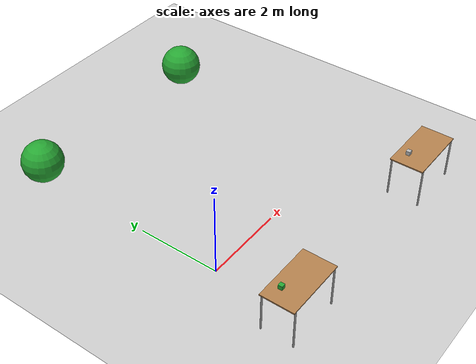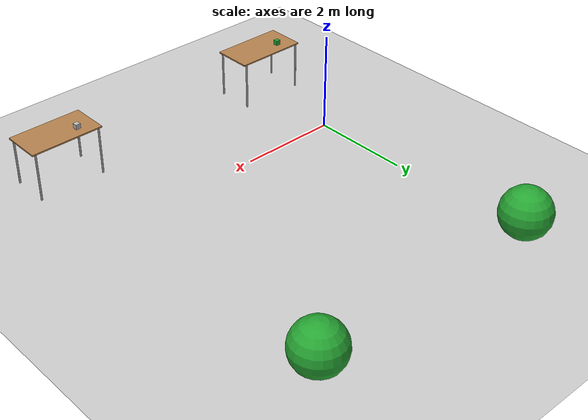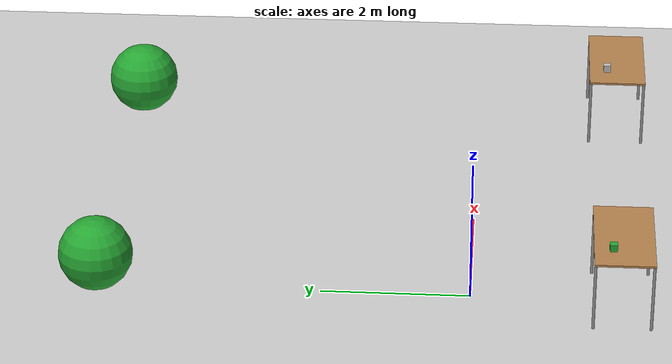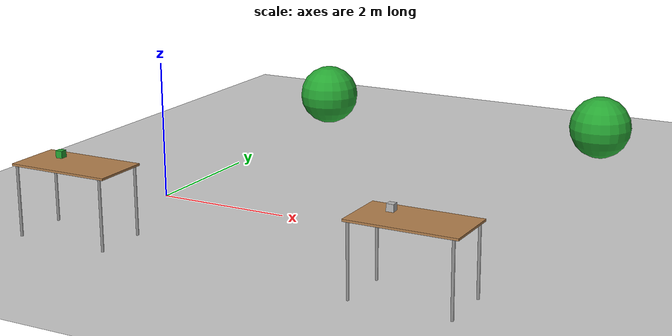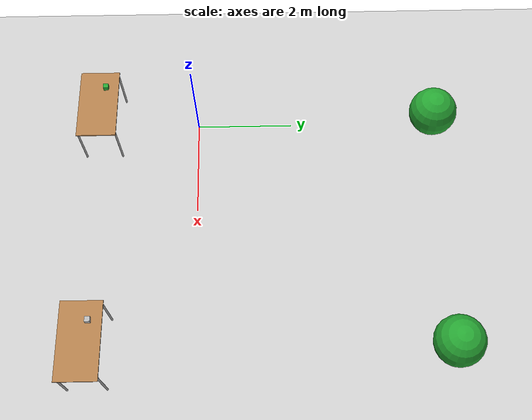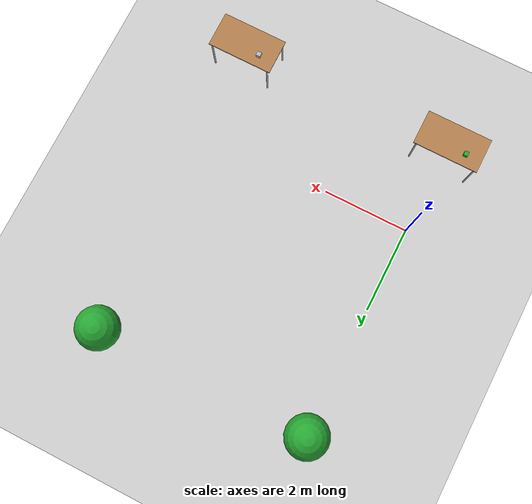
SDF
<sdf version="1.5">
 <world name="default">
  <light name="sun" type="directional">
   <pose>0 0 10 0 -0 0</pose>
   <diffuse>0.8 0.8 0.8 1</diffuse>
   <specular>0.2 0.2 0.2 1</specular>
   <attenuation>
    <range>1000</range>
    <constant>0.9</constant>
    <linear>0.01</linear>
    <quadratic>0.001</quadratic>
   </attenuation>
   <direction>-0.5 0.1 -0.9</direction>
  </light>
  <model name="ground_plane">
   <static>1</static>
   <link name="link">
    <collision name="collision">
     <geometry><plane><normal>0 0 1</normal><size>100 100</size></plane></geometry>
     <surface><friction><ode><mu>100</mu><mu2>50</mu2></ode></friction></surface>
    </collision>
    <visual name="visual">
     <cast_shadows>0</cast_shadows>
     <geometry><plane><normal>0 0 1</normal><size>100 100</size></plane></geometry>
     <material>
      <script><uri>file://media/materials/scripts/gazebo.material</uri><name>Gazebo/Grey</name></script>
     </material>
    </visual>
   </link>
  </model>
  <physics name="default_physics" default="0" type="ode">
   <max_step_size>0.001</max_step_size>
   <real_time_factor>1</real_time_factor>
   <real_time_update_rate>1000</real_time_update_rate>
   <gravity>0 0 -9.8</gravity>
   <magnetic_field>5.5645e-06 2.28758e-05 -4.23884e-05</magnetic_field>
  </physics>
  <scene><ambient>0.4 0.4 0.4 1</ambient><background>0.7 0.7 0.7 1</background><shadows>1</shadows></scene>
  <spherical_coordinates>
   <surface_model>EARTH_WGS84</surface_model>
   <latitude_deg>0</latitude_deg>
   <longitude_deg>0</longitude_deg>
   <elevation>0</elevation>
   <heading_deg>0</heading_deg>
  </spherical_coordinates>
  <model name="table">
   <static>1</static>
   <link name="link">
    <collision name="surface">
     <pose>0 0 1 0 -0 0</pose>
     <geometry><box><size>1.5 0.8 0.03</size></box></geometry>
     <surface><friction><ode><mu>0.6</mu><mu2>0.6</mu2></ode></friction></surface>
    </collision>
    <visual name="visual1">
     <pose>0 0 1 0 -0 0</pose>
     <geometry><box><size>1.5 0.8 0.03</size></box></geometry>
     <material>
      <script><uri>file://media/materials/scripts/gazebo.material</uri><name>Gazebo/Wood</name></script>
     </material>
    </visual>
    <collision name="front_left_leg">
     <pose>0.68 0.38 0.5 0 -0 0</pose>
     <geometry><cylinder><radius>0.02</radius><length>1</length></cylinder></geometry>
    </collision>
    <visual name="front_left_leg">
     <pose>0.68 0.38 0.5 0 -0 0</pose>
     <geometry><cylinder><radius>0.02</radius><length>1</length></cylinder></geometry>
     <material>
      <script><uri>file://media/materials/scripts/gazebo.material</uri><name>Gazebo/Grey</name></script>
     </material>
    </visual>
    <collision name="front_right_leg">
     <pose>0.68 -0.38 0.5 0 -0 0</pose>
     <geometry><cylinder><radius>0.02</radius><length>1</length></cylinder></geometry>
    </collision>
    <visual name="front_right_leg">
     <pose>0.68 -0.38 0.5 0 -0 0</pose>
     <geometry><cylinder><radius>0.02</radius><length>1</length></cylinder></geometry>
     <material>
      <script><uri>file://media/materials/scripts/gazebo.material</uri><name>Gazebo/Grey</name></script>
     </material>
    </visual>
    <collision name="back_right_leg">
     <pose>-0.68 -0.38 0.5 0 -0 0</pose>
     <geometry><cylinder><radius>0.02</radius><length>1</length></cylinder></geometry>
    </collision>
    <visual name="back_right_leg">
     <pose>-0.68 -0.38 0.5 0 -0 0</pose>
     <geometry><cylinder><radius>0.02</radius><length>1</length></cylinder></geometry>
     <material>
      <script><uri>file://media/materials/scripts/gazebo.material</uri><name>Gazebo/Grey</name></script>
     </material>
    </visual>
    <collision name="back_left_leg">
     <pose>-0.68 0.38 0.5 0 -0 0</pose>
     <geometry><cylinder><radius>0.02</radius><length>1</length></cylinder></geometry>
    </collision>
    <visual name="back_left_leg">
     <pose>-0.68 0.38 0.5 0 -0 0</pose>
     <geometry><cylinder><radius>0.02</radius><length>1</length></cylinder></geometry>
     <material>
      <script><uri>file://media/materials/scripts/gazebo.material</uri><name>Gazebo/Grey</name></script>
     </material>
    </visual>
   </link>
   <pose>0 -2 0 0 -0 0</pose>
  </model>
  <model name="table_0">
   <static>1</static>
   <link name="link">
    <collision name="surface">
     <pose>0 0 1 0 -0 0</pose>
     <geometry><box><size>1.5 0.8 0.03</size></box></geometry>
     <surface><friction><ode><mu>0.6</mu><mu2>0.6</mu2></ode></friction></surface>
    </collision>
    <visual name="visual1">
     <pose>0 0 1 0 -0 0</pose>
     <geometry><box><size>1.5 0.8 0.03</size></box></geometry>
     <material>
      <script><uri>file://media/materials/scripts/gazebo.material</uri><name>Gazebo/Wood</name></script>
     </material>
    </visual>
    <collision name="front_left_leg">
     <pose>0.68 0.38 0.5 0 -0 0</pose>
     <geometry><cylinder><radius>0.02</radius><length>1</length></cylinder></geometry>
    </collision>
    <visual name="front_left_leg">
     <pose>0.68 0.38 0.5 0 -0 0</pose>
     <geometry><cylinder><radius>0.02</radius><length>1</length></cylinder></geometry>
     <material>
      <script><uri>file://media/materials/scripts/gazebo.material</uri><name>Gazebo/Grey</name></script>
     </material>
    </visual>
    <collision name="front_right_leg">
     <pose>0.68 -0.38 0.5 0 -0 0</pose>
     <geometry><cylinder><radius>0.02</radius><length>1</length></cylinder></geometry>
    </collision>
    <visual name="front_right_leg">
     <pose>0.68 -0.38 0.5 0 -0 0</pose>
     <geometry><cylinder><radius>0.02</radius><length>1</length></cylinder></geometry>
     <material>
      <script><uri>file://media/materials/scripts/gazebo.material</uri><name>Gazebo/Grey</name></script>
     </material>
    </visual>
    <collision name="back_right_leg">
     <pose>-0.68 -0.38 0.5 0 -0 0</pose>
     <geometry><cylinder><radius>0.02</radius><length>1</length></cylinder></geometry>
    </collision>
    <visual name="back_right_leg">
     <pose>-0.68 -0.38 0.5 0 -0 0</pose>
     <geometry><cylinder><radius>0.02</radius><length>1</length></cylinder></geometry>
     <material>
      <script><uri>file://media/materials/scripts/gazebo.material</uri><name>Gazebo/Grey</name></script>
     </material>
    </visual>
    <collision name="back_left_leg">
     <pose>-0.68 0.38 0.5 0 -0 0</pose>
     <geometry><cylinder><radius>0.02</radius><length>1</length></cylinder></geometry>
    </collision>
    <visual name="back_left_leg">
     <pose>-0.68 0.38 0.5 0 -0 0</pose>
     <geometry><cylinder><radius>0.02</radius><length>1</length></cylinder></geometry>
     <material>
      <script><uri>file://media/materials/scripts/gazebo.material</uri><name>Gazebo/Grey</name></script>
     </material>
    </visual>
   </link>
   <pose>5 -2 0 0 -0 0</pose>
  </model>
  <model name="testBouy">
   <pose>0 5 0.5 0 -0 0</pose>
   <link name="unit_sphere_0">
    <visual name="unit_sphere_0_visual">
     <geometry><sphere><radius>0.5</radius></sphere></geometry>
     <material>
      <script><uri>file://media/materials/scripts/gazebo.material</uri><name>Gazebo/Green</name></script>
     </material>
    </visual>
    <collision name="unit_sphere_0_collision">
     <geometry><sphere><radius>0.5</radius></sphere></geometry>
    </collision>
    <inertial>
     <inertia><ixx>1</ixx><ixy>0</ixy><ixz>0</ixz><iyy>1</iyy><iyz>0</iyz><izz>1</izz></inertia>
     <mass>1</mass>
    </inertial>
   </link>
   <static>0</static>
  </model>
  <model name="testBouy_0">
   <pose>5 5 0.5 0 -0 0</pose>
   <link name="unit_sphere_0">
    <visual name="unit_sphere_0_visual">
     <geometry><sphere><radius>0.5</radius></sphere></geometry>
     <material>
      <script><uri>file://media/materials/scripts/gazebo.material</uri><name>Gazebo/Green</name></script>
     </material>
    </visual>
    <collision name="unit_sphere_0_collision">
     <geometry><sphere><radius>0.5</radius></sphere></geometry>
    </collision>
    <inertial>
     <inertia><ixx>1</ixx><ixy>0</ixy><ixz>0</ixz><iyy>1</iyy><iyz>0</iyz><izz>1</izz></inertia>
     <mass>1</mass>
    </inertial>
   </link>
   <static>0</static>
  </model>
  <model name="test_camera_hd">
   <link name="link">
    <pose>0.05 0.05 0.05 0 -0 0</pose>
    <inertial>
     <mass>0.1</mass>
     <inertia><ixx>1</ixx><ixy>0</ixy><ixz>0</ixz><iyy>1</iyy><iyz>0</iyz><izz>1</izz></inertia>
    </inertial>
    <collision name="collision"><geometry><box><size>0.1 0.1 0.1</size></box></geometry></collision>
    <visual name="visual"><geometry><box><size>0.1 0.1 0.1</size></box></geometry></visual>
    <sensor name="camera" type="camera">
     <camera name="__default__">
      <horizontal_fov>1.047</horizontal_fov>
      <image><width>1920</width><height>1080</height></image>
      <clip><near>0.1</near><far>100</far></clip>
     </camera>
     <always_on>1</always_on>
     <update_rate>30</update_rate>
     <visualize>1</visualize>
    </sensor>
   </link>
   <pose>4.68334 -1.9 1.015 -1e-06 2e-06 1.60006</pose>
  </model>
  <model name="distorted_test_camera_hd">
   <link name="link">
    <pose>0.05 0.05 0.05 0 -0 0</pose>
    <inertial>
     <mass>0.1</mass>
     <inertia><ixx>1</ixx><ixy>0</ixy><ixz>0</ixz><iyy>1</iyy><iyz>0</iyz><izz>1</izz></inertia>
    </inertial>
    <collision name="collision"><geometry><box><size>0.1 0.1 0.1</size></box></geometry></collision>
    <visual name="visual">
     <geometry><box><size>0.1 0.1 0.1</size></box></geometry>
     <material>
      <script><uri>file://media/materials/scripts/gazebo.material</uri><name>Gazebo/Green</name></script>
     </material>
    </visual>
    <sensor name="camera" type="camera">
     <camera name="__default__">
      <horizontal_fov>1.047</horizontal_fov>
      <image><width>1920</width><height>1080</height></image>
      <clip><near>0.1</near><far>100</far></clip>
      <distortion>
       <k1>-0.25</k1>
       <k2>0.12</k2>
       <k3>0</k3>
       <p1>-0.00028</p1>
       <p2>-5e-05</p2>
       <center>0.5 0.5</center>
      </distortion>
     </camera>
     <always_on>1</always_on>
     <update_rate>30</update_rate>
     <visualize>1</visualize>
     <plugin name="camera_controller" filename="libgazebo_ros_camera.so">
      <alwaysOn>true</alwaysOn>
      <updateRate>0.0</updateRate>
      <cameraName>my_poop</cameraName>
      <imageTopicName>image_raw</imageTopicName>
      <cameraInfoTopicName>camera_info</cameraInfoTopicName>
      <frameName>camera_link</frameName>
     </plugin>
    </sensor>
   </link>
   <pose>-0.316664 -1.9 1.015 -1.4e-05 1.2e-05 1.60004</pose>
  </model>
 </world>
</sdf>
